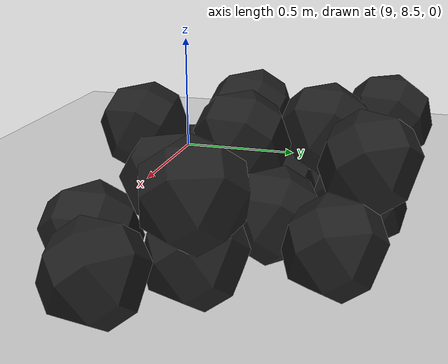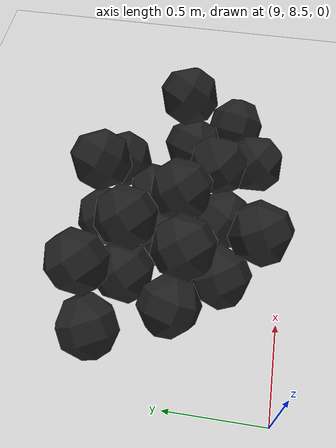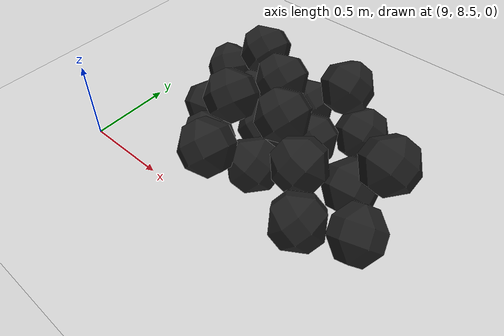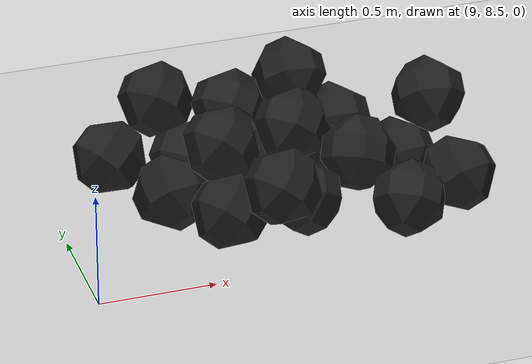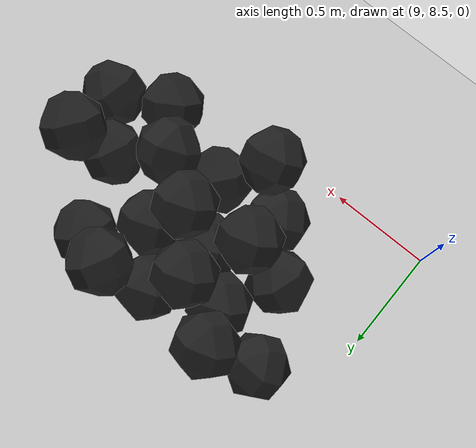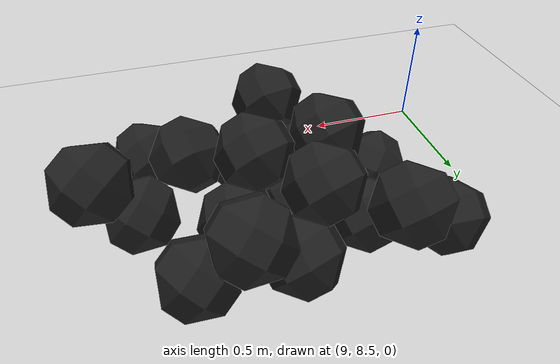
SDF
<sdf version="1.7">
 <world name="default">
  <model name="ground_plane">
   <static>1</static>
   <link name="link">
    <collision name="collision">
     <geometry><plane><normal>0 0 1</normal><size>100 100</size></plane></geometry>
     <surface><friction><ode><mu>100</mu><mu2>50</mu2></ode></friction></surface>
    </collision>
    <visual name="visual">
     <cast_shadows>0</cast_shadows>
     <geometry><plane><normal>0 0 1</normal><size>100 100</size></plane></geometry>
     <material>
      <script><uri>file://media/materials/scripts/gazebo.material</uri><name>Gazebo/Grey</name></script>
     </material>
    </visual>
   </link>
  </model>
  <model name="haoduomiantiaa_1">
   <link name="link_0">
    <inertial>
     <mass>0.2</mass>
     <inertia>
      <ixx>0.166667</ixx>
      <ixy>0</ixy>
      <ixz>0</ixz>
      <iyy>0.166667</iyy>
      <iyz>0</iyz>
      <izz>0.166667</izz>
     </inertia>
    </inertial>
    <visual name="visual">
     <geometry>
      <mesh>
       <uri>/home/lihaoyang/catkin_ws/src/pudong_gazebo/world/stl/haoduomianti.stl</uri>
       <scale>1 1 1</scale>
      </mesh>
     </geometry>
     <material>
      <lighting>1</lighting>
      <script><uri>file://media/materials/scripts/gazebo.material</uri><name>Gazebo/Black</name></script>
      <shader type="pixel"><normal_map>__default__</normal_map></shader>
      <ambient>0.3 0.3 0.3 1</ambient>
      <diffuse>0.7 0.7 0.7 1</diffuse>
      <specular>0.01 0.01 0.01 1</specular>
      <emissive>0 0 0 1</emissive>
     </material>
    </visual>
    <collision name="collision">
     <geometry>
      <mesh>
       <uri>/home/lihaoyang/catkin_ws/src/pudong_gazebo/world/stl/haoduomianti.stl</uri>
       <scale>1 1 1</scale>
      </mesh>
     </geometry>
     <surface>
      <friction>
       <ode><mu>1</mu><mu2>1</mu2><fdir1>0 0 0</fdir1><slip1>0</slip1><slip2>0</slip2></ode>
       <torsional>
        <coefficient>1</coefficient>
        <patch_radius>0</patch_radius>
        <surface_radius>0</surface_radius>
        <use_patch_radius>1</use_patch_radius>
        <ode><slip>0</slip></ode>
       </torsional>
      </friction>
      <bounce><restitution_coefficient>0</restitution_coefficient><threshold>1e+06</threshold></bounce>
      <contact>
       <collide_without_contact>0</collide_without_contact>
       <collide_without_contact_bitmask>1</collide_without_contact_bitmask>
       <collide_bitmask>1</collide_bitmask>
       <ode>
        <soft_cfm>0</soft_cfm>
        <soft_erp>0.2</soft_erp>
        <kp>1e+13</kp>
        <kd>1</kd>
        <max_vel>0.01</max_vel>
        <min_depth>0</min_depth>
       </ode>
       <bullet>
        <split_impulse>1</split_impulse>
        <split_impulse_penetration_threshold>-0.01</split_impulse_penetration_threshold>
        <soft_cfm>0</soft_cfm>
        <soft_erp>0.2</soft_erp>
        <kp>1e+13</kp>
        <kd>1</kd>
       </bullet>
      </contact>
     </surface>
    </collision>
   </link>
   <static>0</static>
   <pose>10.0034 9.05786 0.103944 0.788247 -0.6195 0.880042</pose>
  </model>
  <model name="haoduomiantiaa_6">
   <link name="link_0">
    <inertial>
     <mass>0.2</mass>
     <inertia>
      <ixx>0.166667</ixx>
      <ixy>0</ixy>
      <ixz>0</ixz>
      <iyy>0.166667</iyy>
      <iyz>0</iyz>
      <izz>0.166667</izz>
     </inertia>
    </inertial>
    <visual name="visual">
     <geometry>
      <mesh>
       <uri>/home/lihaoyang/catkin_ws/src/pudong_gazebo/world/stl/haoduomianti.stl</uri>
       <scale>1 1 1</scale>
      </mesh>
     </geometry>
     <material>
      <lighting>1</lighting>
      <script><uri>file://media/materials/scripts/gazebo.material</uri><name>Gazebo/Black</name></script>
      <shader type="pixel"><normal_map>__default__</normal_map></shader>
      <ambient>0.3 0.3 0.3 1</ambient>
      <diffuse>0.7 0.7 0.7 1</diffuse>
      <specular>0.01 0.01 0.01 1</specular>
      <emissive>0 0 0 1</emissive>
     </material>
    </visual>
    <collision name="collision">
     <geometry>
      <mesh>
       <uri>/home/lihaoyang/catkin_ws/src/pudong_gazebo/world/stl/haoduomianti.stl</uri>
       <scale>1 1 1</scale>
      </mesh>
     </geometry>
     <surface>
      <friction>
       <ode><mu>1</mu><mu2>1</mu2><fdir1>0 0 0</fdir1><slip1>0</slip1><slip2>0</slip2></ode>
       <torsional>
        <coefficient>1</coefficient>
        <patch_radius>0</patch_radius>
        <surface_radius>0</surface_radius>
        <use_patch_radius>1</use_patch_radius>
        <ode><slip>0</slip></ode>
       </torsional>
      </friction>
      <bounce><restitution_coefficient>0</restitution_coefficient><threshold>1e+06</threshold></bounce>
      <contact>
       <collide_without_contact>0</collide_without_contact>
       <collide_without_contact_bitmask>1</collide_without_contact_bitmask>
       <collide_bitmask>1</collide_bitmask>
       <ode>
        <soft_cfm>0</soft_cfm>
        <soft_erp>0.2</soft_erp>
        <kp>1e+13</kp>
        <kd>1</kd>
        <max_vel>0.01</max_vel>
        <min_depth>0</min_depth>
       </ode>
       <bullet>
        <split_impulse>1</split_impulse>
        <split_impulse_penetration_threshold>-0.01</split_impulse_penetration_threshold>
        <soft_cfm>0</soft_cfm>
        <soft_erp>0.2</soft_erp>
        <kp>1e+13</kp>
        <kd>1</kd>
       </bullet>
      </contact>
     </surface>
    </collision>
   </link>
   <static>0</static>
   <pose>10.6652 8.82141 -0.115469 0.785407 -0.615474 -0.216678</pose>
  </model>
  <model name="haoduomiantiaa_11">
   <link name="link_0">
    <inertial>
     <mass>0.2</mass>
     <inertia>
      <ixx>0.166667</ixx>
      <ixy>0</ixy>
      <ixz>0</ixz>
      <iyy>0.166667</iyy>
      <iyz>0</iyz>
      <izz>0.166667</izz>
     </inertia>
    </inertial>
    <visual name="visual">
     <geometry>
      <mesh>
       <uri>/home/lihaoyang/catkin_ws/src/pudong_gazebo/world/stl/haoduomianti.stl</uri>
       <scale>1 1 1</scale>
      </mesh>
     </geometry>
     <material>
      <lighting>1</lighting>
      <script><uri>file://media/materials/scripts/gazebo.material</uri><name>Gazebo/Black</name></script>
      <shader type="pixel"><normal_map>__default__</normal_map></shader>
      <ambient>0.3 0.3 0.3 1</ambient>
      <diffuse>0.7 0.7 0.7 1</diffuse>
      <specular>0.01 0.01 0.01 1</specular>
      <emissive>0 0 0 1</emissive>
     </material>
    </visual>
    <collision name="collision">
     <geometry>
      <mesh>
       <uri>/home/lihaoyang/catkin_ws/src/pudong_gazebo/world/stl/haoduomianti.stl</uri>
       <scale>1 1 1</scale>
      </mesh>
     </geometry>
     <surface>
      <friction>
       <ode><mu>1</mu><mu2>1</mu2><fdir1>0 0 0</fdir1><slip1>0</slip1><slip2>0</slip2></ode>
       <torsional>
        <coefficient>1</coefficient>
        <patch_radius>0</patch_radius>
        <surface_radius>0</surface_radius>
        <use_patch_radius>1</use_patch_radius>
        <ode><slip>0</slip></ode>
       </torsional>
      </friction>
      <bounce><restitution_coefficient>0</restitution_coefficient><threshold>1e+06</threshold></bounce>
      <contact>
       <collide_without_contact>0</collide_without_contact>
       <collide_without_contact_bitmask>1</collide_without_contact_bitmask>
       <collide_bitmask>1</collide_bitmask>
       <ode>
        <soft_cfm>0</soft_cfm>
        <soft_erp>0.2</soft_erp>
        <kp>1e+13</kp>
        <kd>1</kd>
        <max_vel>0.01</max_vel>
        <min_depth>0</min_depth>
       </ode>
       <bullet>
        <split_impulse>1</split_impulse>
        <split_impulse_penetration_threshold>-0.01</split_impulse_penetration_threshold>
        <soft_cfm>0</soft_cfm>
        <soft_erp>0.2</soft_erp>
        <kp>1e+13</kp>
        <kd>1</kd>
       </bullet>
      </contact>
     </surface>
    </collision>
   </link>
   <static>0</static>
   <pose>9.61211 9.29436 -0.1155 0.785394 -0.615481 -1.21931</pose>
  </model>
  <model name="haoduomiantiaa_13">
   <link name="link_0">
    <inertial>
     <mass>0.2</mass>
     <inertia>
      <ixx>0.166667</ixx>
      <ixy>0</ixy>
      <ixz>0</ixz>
      <iyy>0.166667</iyy>
      <iyz>0</iyz>
      <izz>0.166667</izz>
     </inertia>
    </inertial>
    <visual name="visual">
     <geometry>
      <mesh>
       <uri>/home/lihaoyang/catkin_ws/src/pudong_gazebo/world/stl/haoduomianti.stl</uri>
       <scale>1 1 1</scale>
      </mesh>
     </geometry>
     <material>
      <lighting>1</lighting>
      <script><uri>file://media/materials/scripts/gazebo.material</uri><name>Gazebo/Black</name></script>
      <shader type="pixel"><normal_map>__default__</normal_map></shader>
      <ambient>0.3 0.3 0.3 1</ambient>
      <diffuse>0.7 0.7 0.7 1</diffuse>
      <specular>0.01 0.01 0.01 1</specular>
      <emissive>0 0 0 1</emissive>
     </material>
    </visual>
    <collision name="collision">
     <geometry>
      <mesh>
       <uri>/home/lihaoyang/catkin_ws/src/pudong_gazebo/world/stl/haoduomianti.stl</uri>
       <scale>1 1 1</scale>
      </mesh>
     </geometry>
     <surface>
      <friction>
       <ode><mu>1</mu><mu2>1</mu2><fdir1>0 0 0</fdir1><slip1>0</slip1><slip2>0</slip2></ode>
       <torsional>
        <coefficient>1</coefficient>
        <patch_radius>0</patch_radius>
        <surface_radius>0</surface_radius>
        <use_patch_radius>1</use_patch_radius>
        <ode><slip>0</slip></ode>
       </torsional>
      </friction>
      <bounce><restitution_coefficient>0</restitution_coefficient><threshold>1e+06</threshold></bounce>
      <contact>
       <collide_without_contact>0</collide_without_contact>
       <collide_without_contact_bitmask>1</collide_without_contact_bitmask>
       <collide_bitmask>1</collide_bitmask>
       <ode>
        <soft_cfm>0</soft_cfm>
        <soft_erp>0.2</soft_erp>
        <kp>1e+13</kp>
        <kd>1</kd>
        <max_vel>0.01</max_vel>
        <min_depth>0</min_depth>
       </ode>
       <bullet>
        <split_impulse>1</split_impulse>
        <split_impulse_penetration_threshold>-0.01</split_impulse_penetration_threshold>
        <soft_cfm>0</soft_cfm>
        <soft_erp>0.2</soft_erp>
        <kp>1e+13</kp>
        <kd>1</kd>
       </bullet>
      </contact>
     </surface>
    </collision>
   </link>
   <static>0</static>
   <pose>9.92416 9.44285 -0.115535 0.785401 -0.615476 2.97005</pose>
  </model>
  <model name="haoduomiantiaa_34">
   <link name="link_0">
    <inertial>
     <mass>0.2</mass>
     <inertia>
      <ixx>0.166667</ixx>
      <ixy>0</ixy>
      <ixz>0</ixz>
      <iyy>0.166667</iyy>
      <iyz>0</iyz>
      <izz>0.166667</izz>
     </inertia>
    </inertial>
    <visual name="visual">
     <geometry>
      <mesh>
       <uri>/home/lihaoyang/catkin_ws/src/pudong_gazebo/world/stl/haoduomianti.stl</uri>
       <scale>1 1 1</scale>
      </mesh>
     </geometry>
     <material>
      <lighting>1</lighting>
      <script><uri>file://media/materials/scripts/gazebo.material</uri><name>Gazebo/Black</name></script>
      <shader type="pixel"><normal_map>__default__</normal_map></shader>
      <ambient>0.3 0.3 0.3 1</ambient>
      <diffuse>0.7 0.7 0.7 1</diffuse>
      <specular>0.01 0.01 0.01 1</specular>
      <emissive>0 0 0 1</emissive>
     </material>
    </visual>
    <collision name="collision">
     <geometry>
      <mesh>
       <uri>/home/lihaoyang/catkin_ws/src/pudong_gazebo/world/stl/haoduomianti.stl</uri>
       <scale>1 1 1</scale>
      </mesh>
     </geometry>
     <surface>
      <friction>
       <ode><mu>1</mu><mu2>1</mu2><fdir1>0 0 0</fdir1><slip1>0</slip1><slip2>0</slip2></ode>
       <torsional>
        <coefficient>1</coefficient>
        <patch_radius>0</patch_radius>
        <surface_radius>0</surface_radius>
        <use_patch_radius>1</use_patch_radius>
        <ode><slip>0</slip></ode>
       </torsional>
      </friction>
      <bounce><restitution_coefficient>0</restitution_coefficient><threshold>1e+06</threshold></bounce>
      <contact>
       <collide_without_contact>0</collide_without_contact>
       <collide_without_contact_bitmask>1</collide_without_contact_bitmask>
       <collide_bitmask>1</collide_bitmask>
       <ode>
        <soft_cfm>0</soft_cfm>
        <soft_erp>0.2</soft_erp>
        <kp>1e+13</kp>
        <kd>1</kd>
        <max_vel>0.01</max_vel>
        <min_depth>0</min_depth>
       </ode>
       <bullet>
        <split_impulse>1</split_impulse>
        <split_impulse_penetration_threshold>-0.01</split_impulse_penetration_threshold>
        <soft_cfm>0</soft_cfm>
        <soft_erp>0.2</soft_erp>
        <kp>1e+13</kp>
        <kd>1</kd>
       </bullet>
      </contact>
     </surface>
    </collision>
   </link>
   <static>0</static>
   <pose>9.99031 8.82987 -0.115589 0.785568 -0.615558 -0.683853</pose>
  </model>
  <model name="haoduomiantiaa_48">
   <link name="link_0">
    <inertial>
     <mass>0.2</mass>
     <inertia>
      <ixx>0.166667</ixx>
      <ixy>0</ixy>
      <ixz>0</ixz>
      <iyy>0.166667</iyy>
      <iyz>0</iyz>
      <izz>0.166667</izz>
     </inertia>
    </inertial>
    <visual name="visual">
     <geometry>
      <mesh>
       <uri>/home/lihaoyang/catkin_ws/src/pudong_gazebo/world/stl/haoduomianti.stl</uri>
       <scale>1 1 1</scale>
      </mesh>
     </geometry>
     <material>
      <lighting>1</lighting>
      <script><uri>file://media/materials/scripts/gazebo.material</uri><name>Gazebo/Black</name></script>
      <shader type="pixel"><normal_map>__default__</normal_map></shader>
      <ambient>0.3 0.3 0.3 1</ambient>
      <diffuse>0.7 0.7 0.7 1</diffuse>
      <specular>0.01 0.01 0.01 1</specular>
      <emissive>0 0 0 1</emissive>
     </material>
    </visual>
    <collision name="collision">
     <geometry>
      <mesh>
       <uri>/home/lihaoyang/catkin_ws/src/pudong_gazebo/world/stl/haoduomianti.stl</uri>
       <scale>1 1 1</scale>
      </mesh>
     </geometry>
     <surface>
      <friction>
       <ode><mu>1</mu><mu2>1</mu2><fdir1>0 0 0</fdir1><slip1>0</slip1><slip2>0</slip2></ode>
       <torsional>
        <coefficient>1</coefficient>
        <patch_radius>0</patch_radius>
        <surface_radius>0</surface_radius>
        <use_patch_radius>1</use_patch_radius>
        <ode><slip>0</slip></ode>
       </torsional>
      </friction>
      <bounce><restitution_coefficient>0</restitution_coefficient><threshold>1e+06</threshold></bounce>
      <contact>
       <collide_without_contact>0</collide_without_contact>
       <collide_without_contact_bitmask>1</collide_without_contact_bitmask>
       <collide_bitmask>1</collide_bitmask>
       <ode>
        <soft_cfm>0</soft_cfm>
        <soft_erp>0.2</soft_erp>
        <kp>1e+13</kp>
        <kd>1</kd>
        <max_vel>0.01</max_vel>
        <min_depth>0</min_depth>
       </ode>
       <bullet>
        <split_impulse>1</split_impulse>
        <split_impulse_penetration_threshold>-0.01</split_impulse_penetration_threshold>
        <soft_cfm>0</soft_cfm>
        <soft_erp>0.2</soft_erp>
        <kp>1e+13</kp>
        <kd>1</kd>
       </bullet>
      </contact>
     </surface>
    </collision>
   </link>
   <static>0</static>
   <pose>10.318 9.42876 -0.115587 0.785393 -0.615485 1.54224</pose>
  </model>
  <model name="haoduomiantiaa_52">
   <link name="link_0">
    <inertial>
     <mass>0.2</mass>
     <inertia>
      <ixx>0.166667</ixx>
      <ixy>0</ixy>
      <ixz>0</ixz>
      <iyy>0.166667</iyy>
      <iyz>0</iyz>
      <izz>0.166667</izz>
     </inertia>
    </inertial>
    <visual name="visual">
     <geometry>
      <mesh>
       <uri>/home/lihaoyang/catkin_ws/src/pudong_gazebo/world/stl/haoduomianti.stl</uri>
       <scale>1 1 1</scale>
      </mesh>
     </geometry>
     <material>
      <lighting>1</lighting>
      <script><uri>file://media/materials/scripts/gazebo.material</uri><name>Gazebo/Black</name></script>
      <shader type="pixel"><normal_map>__default__</normal_map></shader>
      <ambient>0.3 0.3 0.3 1</ambient>
      <diffuse>0.7 0.7 0.7 1</diffuse>
      <specular>0.01 0.01 0.01 1</specular>
      <emissive>0 0 0 1</emissive>
     </material>
    </visual>
    <collision name="collision">
     <geometry>
      <mesh>
       <uri>/home/lihaoyang/catkin_ws/src/pudong_gazebo/world/stl/haoduomianti.stl</uri>
       <scale>1 1 1</scale>
      </mesh>
     </geometry>
     <surface>
      <friction>
       <ode><mu>1</mu><mu2>1</mu2><fdir1>0 0 0</fdir1><slip1>0</slip1><slip2>0</slip2></ode>
       <torsional>
        <coefficient>1</coefficient>
        <patch_radius>0</patch_radius>
        <surface_radius>0</surface_radius>
        <use_patch_radius>1</use_patch_radius>
        <ode><slip>0</slip></ode>
       </torsional>
      </friction>
      <bounce><restitution_coefficient>0</restitution_coefficient><threshold>1e+06</threshold></bounce>
      <contact>
       <collide_without_contact>0</collide_without_contact>
       <collide_without_contact_bitmask>1</collide_without_contact_bitmask>
       <collide_bitmask>1</collide_bitmask>
       <ode>
        <soft_cfm>0</soft_cfm>
        <soft_erp>0.2</soft_erp>
        <kp>1e+13</kp>
        <kd>1</kd>
        <max_vel>0.01</max_vel>
        <min_depth>0</min_depth>
       </ode>
       <bullet>
        <split_impulse>1</split_impulse>
        <split_impulse_penetration_threshold>-0.01</split_impulse_penetration_threshold>
        <soft_cfm>0</soft_cfm>
        <soft_erp>0.2</soft_erp>
        <kp>1e+13</kp>
        <kd>1</kd>
       </bullet>
      </contact>
     </surface>
    </collision>
   </link>
   <static>0</static>
   <pose>9.46501 9.03412 -0.115525 0.7854 -0.61547 -2.40322</pose>
  </model>
  <model name="haoduomiantiaa_53">
   <link name="link_0">
    <inertial>
     <mass>0.2</mass>
     <inertia>
      <ixx>0.166667</ixx>
      <ixy>0</ixy>
      <ixz>0</ixz>
      <iyy>0.166667</iyy>
      <iyz>0</iyz>
      <izz>0.166667</izz>
     </inertia>
    </inertial>
    <visual name="visual">
     <geometry>
      <mesh>
       <uri>/home/lihaoyang/catkin_ws/src/pudong_gazebo/world/stl/haoduomianti.stl</uri>
       <scale>1 1 1</scale>
      </mesh>
     </geometry>
     <material>
      <lighting>1</lighting>
      <script><uri>file://media/materials/scripts/gazebo.material</uri><name>Gazebo/Black</name></script>
      <shader type="pixel"><normal_map>__default__</normal_map></shader>
      <ambient>0.3 0.3 0.3 1</ambient>
      <diffuse>0.7 0.7 0.7 1</diffuse>
      <specular>0.01 0.01 0.01 1</specular>
      <emissive>0 0 0 1</emissive>
     </material>
    </visual>
    <collision name="collision">
     <geometry>
      <mesh>
       <uri>/home/lihaoyang/catkin_ws/src/pudong_gazebo/world/stl/haoduomianti.stl</uri>
       <scale>1 1 1</scale>
      </mesh>
     </geometry>
     <surface>
      <friction>
       <ode><mu>1</mu><mu2>1</mu2><fdir1>0 0 0</fdir1><slip1>0</slip1><slip2>0</slip2></ode>
       <torsional>
        <coefficient>1</coefficient>
        <patch_radius>0</patch_radius>
        <surface_radius>0</surface_radius>
        <use_patch_radius>1</use_patch_radius>
        <ode><slip>0</slip></ode>
       </torsional>
      </friction>
      <bounce><restitution_coefficient>0</restitution_coefficient><threshold>1e+06</threshold></bounce>
      <contact>
       <collide_without_contact>0</collide_without_contact>
       <collide_without_contact_bitmask>1</collide_without_contact_bitmask>
       <collide_bitmask>1</collide_bitmask>
       <ode>
        <soft_cfm>0</soft_cfm>
        <soft_erp>0.2</soft_erp>
        <kp>1e+13</kp>
        <kd>1</kd>
        <max_vel>0.01</max_vel>
        <min_depth>0</min_depth>
       </ode>
       <bullet>
        <split_impulse>1</split_impulse>
        <split_impulse_penetration_threshold>-0.01</split_impulse_penetration_threshold>
        <soft_cfm>0</soft_cfm>
        <soft_erp>0.2</soft_erp>
        <kp>1e+13</kp>
        <kd>1</kd>
       </bullet>
      </contact>
     </surface>
    </collision>
   </link>
   <static>0</static>
   <pose>9.30009 9.40328 -0.115469 0.785406 -0.615474 0.489735</pose>
  </model>
  <model name="haoduomiantiaa_56">
   <link name="link_0">
    <inertial>
     <mass>0.2</mass>
     <inertia>
      <ixx>0.166667</ixx>
      <ixy>0</ixy>
      <ixz>0</ixz>
      <iyy>0.166667</iyy>
      <iyz>0</iyz>
      <izz>0.166667</izz>
     </inertia>
    </inertial>
    <visual name="visual">
     <geometry>
      <mesh>
       <uri>/home/lihaoyang/catkin_ws/src/pudong_gazebo/world/stl/haoduomianti.stl</uri>
       <scale>1 1 1</scale>
      </mesh>
     </geometry>
     <material>
      <lighting>1</lighting>
      <script><uri>file://media/materials/scripts/gazebo.material</uri><name>Gazebo/Black</name></script>
      <shader type="pixel"><normal_map>__default__</normal_map></shader>
      <ambient>0.3 0.3 0.3 1</ambient>
      <diffuse>0.7 0.7 0.7 1</diffuse>
      <specular>0.01 0.01 0.01 1</specular>
      <emissive>0 0 0 1</emissive>
     </material>
    </visual>
    <collision name="collision">
     <geometry>
      <mesh>
       <uri>/home/lihaoyang/catkin_ws/src/pudong_gazebo/world/stl/haoduomianti.stl</uri>
       <scale>1 1 1</scale>
      </mesh>
     </geometry>
     <surface>
      <friction>
       <ode><mu>1</mu><mu2>1</mu2><fdir1>0 0 0</fdir1><slip1>0</slip1><slip2>0</slip2></ode>
       <torsional>
        <coefficient>1</coefficient>
        <patch_radius>0</patch_radius>
        <surface_radius>0</surface_radius>
        <use_patch_radius>1</use_patch_radius>
        <ode><slip>0</slip></ode>
       </torsional>
      </friction>
      <bounce><restitution_coefficient>0</restitution_coefficient><threshold>1e+06</threshold></bounce>
      <contact>
       <collide_without_contact>0</collide_without_contact>
       <collide_without_contact_bitmask>1</collide_without_contact_bitmask>
       <collide_bitmask>1</collide_bitmask>
       <ode>
        <soft_cfm>0</soft_cfm>
        <soft_erp>0.2</soft_erp>
        <kp>1e+13</kp>
        <kd>1</kd>
        <max_vel>0.01</max_vel>
        <min_depth>0</min_depth>
       </ode>
       <bullet>
        <split_impulse>1</split_impulse>
        <split_impulse_penetration_threshold>-0.01</split_impulse_penetration_threshold>
        <soft_cfm>0</soft_cfm>
        <soft_erp>0.2</soft_erp>
        <kp>1e+13</kp>
        <kd>1</kd>
       </bullet>
      </contact>
     </surface>
    </collision>
   </link>
   <static>0</static>
   <pose>10.4003 8.68853 -0.115561 0.785419 -0.615482 1.08519</pose>
  </model>
  <model name="haoduomiantiaa_63">
   <link name="link_0">
    <inertial>
     <mass>0.2</mass>
     <inertia>
      <ixx>0.166667</ixx>
      <ixy>0</ixy>
      <ixz>0</ixz>
      <iyy>0.166667</iyy>
      <iyz>0</iyz>
      <izz>0.166667</izz>
     </inertia>
    </inertial>
    <visual name="visual">
     <geometry>
      <mesh>
       <uri>/home/lihaoyang/catkin_ws/src/pudong_gazebo/world/stl/haoduomianti.stl</uri>
       <scale>1 1 1</scale>
      </mesh>
     </geometry>
     <material>
      <lighting>1</lighting>
      <script><uri>file://media/materials/scripts/gazebo.material</uri><name>Gazebo/Black</name></script>
      <shader type="pixel"><normal_map>__default__</normal_map></shader>
      <ambient>0.3 0.3 0.3 1</ambient>
      <diffuse>0.7 0.7 0.7 1</diffuse>
      <specular>0.01 0.01 0.01 1</specular>
      <emissive>0 0 0 1</emissive>
     </material>
    </visual>
    <collision name="collision">
     <geometry>
      <mesh>
       <uri>/home/lihaoyang/catkin_ws/src/pudong_gazebo/world/stl/haoduomianti.stl</uri>
       <scale>1 1 1</scale>
      </mesh>
     </geometry>
     <surface>
      <friction>
       <ode><mu>1</mu><mu2>1</mu2><fdir1>0 0 0</fdir1><slip1>0</slip1><slip2>0</slip2></ode>
       <torsional>
        <coefficient>1</coefficient>
        <patch_radius>0</patch_radius>
        <surface_radius>0</surface_radius>
        <use_patch_radius>1</use_patch_radius>
        <ode><slip>0</slip></ode>
       </torsional>
      </friction>
      <bounce><restitution_coefficient>0</restitution_coefficient><threshold>1e+06</threshold></bounce>
      <contact>
       <collide_without_contact>0</collide_without_contact>
       <collide_without_contact_bitmask>1</collide_without_contact_bitmask>
       <collide_bitmask>1</collide_bitmask>
       <ode>
        <soft_cfm>0</soft_cfm>
        <soft_erp>0.2</soft_erp>
        <kp>1e+13</kp>
        <kd>1</kd>
        <max_vel>0.01</max_vel>
        <min_depth>0</min_depth>
       </ode>
       <bullet>
        <split_impulse>1</split_impulse>
        <split_impulse_penetration_threshold>-0.01</split_impulse_penetration_threshold>
        <soft_cfm>0</soft_cfm>
        <soft_erp>0.2</soft_erp>
        <kp>1e+13</kp>
        <kd>1</kd>
       </bullet>
      </contact>
     </surface>
    </collision>
   </link>
   <static>0</static>
   <pose>10.1141 9.19824 -0.115481 0.785404 -0.615407 -1.2095</pose>
  </model>
  <model name="haoduomiantiaa_70">
   <link name="link_0">
    <inertial>
     <mass>0.2</mass>
     <inertia>
      <ixx>0.166667</ixx>
      <ixy>0</ixy>
      <ixz>0</ixz>
      <iyy>0.166667</iyy>
      <iyz>0</iyz>
      <izz>0.166667</izz>
     </inertia>
    </inertial>
    <visual name="visual">
     <geometry>
      <mesh>
       <uri>/home/lihaoyang/catkin_ws/src/pudong_gazebo/world/stl/haoduomianti.stl</uri>
       <scale>1 1 1</scale>
      </mesh>
     </geometry>
     <material>
      <lighting>1</lighting>
      <script><uri>file://media/materials/scripts/gazebo.material</uri><name>Gazebo/Black</name></script>
      <shader type="pixel"><normal_map>__default__</normal_map></shader>
      <ambient>0.3 0.3 0.3 1</ambient>
      <diffuse>0.7 0.7 0.7 1</diffuse>
      <specular>0.01 0.01 0.01 1</specular>
      <emissive>0 0 0 1</emissive>
     </material>
    </visual>
    <collision name="collision">
     <geometry>
      <mesh>
       <uri>/home/lihaoyang/catkin_ws/src/pudong_gazebo/world/stl/haoduomianti.stl</uri>
       <scale>1 1 1</scale>
      </mesh>
     </geometry>
     <surface>
      <friction>
       <ode><mu>1</mu><mu2>1</mu2><fdir1>0 0 0</fdir1><slip1>0</slip1><slip2>0</slip2></ode>
       <torsional>
        <coefficient>1</coefficient>
        <patch_radius>0</patch_radius>
        <surface_radius>0</surface_radius>
        <use_patch_radius>1</use_patch_radius>
        <ode><slip>0</slip></ode>
       </torsional>
      </friction>
      <bounce><restitution_coefficient>0</restitution_coefficient><threshold>1e+06</threshold></bounce>
      <contact>
       <collide_without_contact>0</collide_without_contact>
       <collide_without_contact_bitmask>1</collide_without_contact_bitmask>
       <collide_bitmask>1</collide_bitmask>
       <ode>
        <soft_cfm>0</soft_cfm>
        <soft_erp>0.2</soft_erp>
        <kp>1e+13</kp>
        <kd>1</kd>
        <max_vel>0.01</max_vel>
        <min_depth>0</min_depth>
       </ode>
       <bullet>
        <split_impulse>1</split_impulse>
        <split_impulse_penetration_threshold>-0.01</split_impulse_penetration_threshold>
        <soft_cfm>0</soft_cfm>
        <soft_erp>0.2</soft_erp>
        <kp>1e+13</kp>
        <kd>1</kd>
       </bullet>
      </contact>
     </surface>
    </collision>
   </link>
   <static>0</static>
   <pose>9.64593 8.9926 0.103041 0.85935 -0.519828 0.747028</pose>
  </model>
  <model name="haoduomiantiaa_74">
   <link name="link_0">
    <inertial>
     <mass>0.2</mass>
     <inertia>
      <ixx>0.166667</ixx>
      <ixy>0</ixy>
      <ixz>0</ixz>
      <iyy>0.166667</iyy>
      <iyz>0</iyz>
      <izz>0.166667</izz>
     </inertia>
    </inertial>
    <visual name="visual">
     <geometry>
      <mesh>
       <uri>/home/lihaoyang/catkin_ws/src/pudong_gazebo/world/stl/haoduomianti.stl</uri>
       <scale>1 1 1</scale>
      </mesh>
     </geometry>
     <material>
      <lighting>1</lighting>
      <script><uri>file://media/materials/scripts/gazebo.material</uri><name>Gazebo/Black</name></script>
      <shader type="pixel"><normal_map>__default__</normal_map></shader>
      <ambient>0.3 0.3 0.3 1</ambient>
      <diffuse>0.7 0.7 0.7 1</diffuse>
      <specular>0.01 0.01 0.01 1</specular>
      <emissive>0 0 0 1</emissive>
     </material>
    </visual>
    <collision name="collision">
     <geometry>
      <mesh>
       <uri>/home/lihaoyang/catkin_ws/src/pudong_gazebo/world/stl/haoduomianti.stl</uri>
       <scale>1 1 1</scale>
      </mesh>
     </geometry>
     <surface>
      <friction>
       <ode><mu>1</mu><mu2>1</mu2><fdir1>0 0 0</fdir1><slip1>0</slip1><slip2>0</slip2></ode>
       <torsional>
        <coefficient>1</coefficient>
        <patch_radius>0</patch_radius>
        <surface_radius>0</surface_radius>
        <use_patch_radius>1</use_patch_radius>
        <ode><slip>0</slip></ode>
       </torsional>
      </friction>
      <bounce><restitution_coefficient>0</restitution_coefficient><threshold>1e+06</threshold></bounce>
      <contact>
       <collide_without_contact>0</collide_without_contact>
       <collide_without_contact_bitmask>1</collide_without_contact_bitmask>
       <collide_bitmask>1</collide_bitmask>
       <ode>
        <soft_cfm>0</soft_cfm>
        <soft_erp>0.2</soft_erp>
        <kp>1e+13</kp>
        <kd>1</kd>
        <max_vel>0.01</max_vel>
        <min_depth>0</min_depth>
       </ode>
       <bullet>
        <split_impulse>1</split_impulse>
        <split_impulse_penetration_threshold>-0.01</split_impulse_penetration_threshold>
        <soft_cfm>0</soft_cfm>
        <soft_erp>0.2</soft_erp>
        <kp>1e+13</kp>
        <kd>1</kd>
       </bullet>
      </contact>
     </surface>
    </collision>
   </link>
   <static>0</static>
   <pose>10.4772 9.05112 -0.115525 0.78544 -0.615491 1.67644</pose>
  </model>
  <model name="haoduomiantiaa_81">
   <link name="link_0">
    <inertial>
     <mass>0.2</mass>
     <inertia>
      <ixx>0.166667</ixx>
      <ixy>0</ixy>
      <ixz>0</ixz>
      <iyy>0.166667</iyy>
      <iyz>0</iyz>
      <izz>0.166667</izz>
     </inertia>
    </inertial>
    <visual name="visual">
     <geometry>
      <mesh>
       <uri>/home/lihaoyang/catkin_ws/src/pudong_gazebo/world/stl/haoduomianti.stl</uri>
       <scale>1 1 1</scale>
      </mesh>
     </geometry>
     <material>
      <lighting>1</lighting>
      <script><uri>file://media/materials/scripts/gazebo.material</uri><name>Gazebo/Black</name></script>
      <shader type="pixel"><normal_map>__default__</normal_map></shader>
      <ambient>0.3 0.3 0.3 1</ambient>
      <diffuse>0.7 0.7 0.7 1</diffuse>
      <specular>0.01 0.01 0.01 1</specular>
      <emissive>0 0 0 1</emissive>
     </material>
    </visual>
    <collision name="collision">
     <geometry>
      <mesh>
       <uri>/home/lihaoyang/catkin_ws/src/pudong_gazebo/world/stl/haoduomianti.stl</uri>
       <scale>1 1 1</scale>
      </mesh>
     </geometry>
     <surface>
      <friction>
       <ode><mu>1</mu><mu2>1</mu2><fdir1>0 0 0</fdir1><slip1>0</slip1><slip2>0</slip2></ode>
       <torsional>
        <coefficient>1</coefficient>
        <patch_radius>0</patch_radius>
        <surface_radius>0</surface_radius>
        <use_patch_radius>1</use_patch_radius>
        <ode><slip>0</slip></ode>
       </torsional>
      </friction>
      <bounce><restitution_coefficient>0</restitution_coefficient><threshold>1e+06</threshold></bounce>
      <contact>
       <collide_without_contact>0</collide_without_contact>
       <collide_without_contact_bitmask>1</collide_without_contact_bitmask>
       <collide_bitmask>1</collide_bitmask>
       <ode>
        <soft_cfm>0</soft_cfm>
        <soft_erp>0.2</soft_erp>
        <kp>1e+13</kp>
        <kd>1</kd>
        <max_vel>0.01</max_vel>
        <min_depth>0</min_depth>
       </ode>
       <bullet>
        <split_impulse>1</split_impulse>
        <split_impulse_penetration_threshold>-0.01</split_impulse_penetration_threshold>
        <soft_cfm>0</soft_cfm>
        <soft_erp>0.2</soft_erp>
        <kp>1e+13</kp>
        <kd>1</kd>
       </bullet>
      </contact>
     </surface>
    </collision>
   </link>
   <static>0</static>
   <pose>9.6548 8.81192 -0.115494 0.785399 -0.615306 -1.46897</pose>
  </model>
  <model name="haoduomiantiaa_93">
   <link name="link_0">
    <inertial>
     <mass>0.2</mass>
     <inertia>
      <ixx>0.166667</ixx>
      <ixy>0</ixy>
      <ixz>0</ixz>
      <iyy>0.166667</iyy>
      <iyz>0</iyz>
      <izz>0.166667</izz>
     </inertia>
    </inertial>
    <visual name="visual">
     <geometry>
      <mesh>
       <uri>/home/lihaoyang/catkin_ws/src/pudong_gazebo/world/stl/haoduomianti.stl</uri>
       <scale>1 1 1</scale>
      </mesh>
     </geometry>
     <material>
      <lighting>1</lighting>
      <script><uri>file://media/materials/scripts/gazebo.material</uri><name>Gazebo/Black</name></script>
      <shader type="pixel"><normal_map>__default__</normal_map></shader>
      <ambient>0.3 0.3 0.3 1</ambient>
      <diffuse>0.7 0.7 0.7 1</diffuse>
      <specular>0.01 0.01 0.01 1</specular>
      <emissive>0 0 0 1</emissive>
     </material>
    </visual>
    <collision name="collision">
     <geometry>
      <mesh>
       <uri>/home/lihaoyang/catkin_ws/src/pudong_gazebo/world/stl/haoduomianti.stl</uri>
       <scale>1 1 1</scale>
      </mesh>
     </geometry>
     <surface>
      <friction>
       <ode><mu>1</mu><mu2>1</mu2><fdir1>0 0 0</fdir1><slip1>0</slip1><slip2>0</slip2></ode>
       <torsional>
        <coefficient>1</coefficient>
        <patch_radius>0</patch_radius>
        <surface_radius>0</surface_radius>
        <use_patch_radius>1</use_patch_radius>
        <ode><slip>0</slip></ode>
       </torsional>
      </friction>
      <bounce><restitution_coefficient>0</restitution_coefficient><threshold>1e+06</threshold></bounce>
      <contact>
       <collide_without_contact>0</collide_without_contact>
       <collide_without_contact_bitmask>1</collide_without_contact_bitmask>
       <collide_bitmask>1</collide_bitmask>
       <ode>
        <soft_cfm>0</soft_cfm>
        <soft_erp>0.2</soft_erp>
        <kp>1e+13</kp>
        <kd>1</kd>
        <max_vel>0.01</max_vel>
        <min_depth>0</min_depth>
       </ode>
       <bullet>
        <split_impulse>1</split_impulse>
        <split_impulse_penetration_threshold>-0.01</split_impulse_penetration_threshold>
        <soft_cfm>0</soft_cfm>
        <soft_erp>0.2</soft_erp>
        <kp>1e+13</kp>
        <kd>1</kd>
       </bullet>
      </contact>
     </surface>
    </collision>
   </link>
   <static>0</static>
   <pose>9.54382 9.4775 0.085328 0.82809 -0.655841 -1.28925</pose>
  </model>
  <model name="haoduomiantiaa_98">
   <link name="link_0">
    <inertial>
     <mass>0.2</mass>
     <inertia>
      <ixx>0.166667</ixx>
      <ixy>0</ixy>
      <ixz>0</ixz>
      <iyy>0.166667</iyy>
      <iyz>0</iyz>
      <izz>0.166667</izz>
     </inertia>
    </inertial>
    <visual name="visual">
     <geometry>
      <mesh>
       <uri>/home/lihaoyang/catkin_ws/src/pudong_gazebo/world/stl/haoduomianti.stl</uri>
       <scale>1 1 1</scale>
      </mesh>
     </geometry>
     <material>
      <lighting>1</lighting>
      <script><uri>file://media/materials/scripts/gazebo.material</uri><name>Gazebo/Black</name></script>
      <shader type="pixel"><normal_map>__default__</normal_map></shader>
      <ambient>0.3 0.3 0.3 1</ambient>
      <diffuse>0.7 0.7 0.7 1</diffuse>
      <specular>0.01 0.01 0.01 1</specular>
      <emissive>0 0 0 1</emissive>
     </material>
    </visual>
    <collision name="collision">
     <geometry>
      <mesh>
       <uri>/home/lihaoyang/catkin_ws/src/pudong_gazebo/world/stl/haoduomianti.stl</uri>
       <scale>1 1 1</scale>
      </mesh>
     </geometry>
     <surface>
      <friction>
       <ode><mu>1</mu><mu2>1</mu2><fdir1>0 0 0</fdir1><slip1>0</slip1><slip2>0</slip2></ode>
       <torsional>
        <coefficient>1</coefficient>
        <patch_radius>0</patch_radius>
        <surface_radius>0</surface_radius>
        <use_patch_radius>1</use_patch_radius>
        <ode><slip>0</slip></ode>
       </torsional>
      </friction>
      <bounce><restitution_coefficient>0</restitution_coefficient><threshold>1e+06</threshold></bounce>
      <contact>
       <collide_without_contact>0</collide_without_contact>
       <collide_without_contact_bitmask>1</collide_without_contact_bitmask>
       <collide_bitmask>1</collide_bitmask>
       <ode>
        <soft_cfm>0</soft_cfm>
        <soft_erp>0.2</soft_erp>
        <kp>1e+13</kp>
        <kd>1</kd>
        <max_vel>0.01</max_vel>
        <min_depth>0</min_depth>
       </ode>
       <bullet>
        <split_impulse>1</split_impulse>
        <split_impulse_penetration_threshold>-0.01</split_impulse_penetration_threshold>
        <soft_cfm>0</soft_cfm>
        <soft_erp>0.2</soft_erp>
        <kp>1e+13</kp>
        <kd>1</kd>
       </bullet>
      </contact>
     </surface>
    </collision>
   </link>
   <static>0</static>
   <pose>9.83109 9.11528 -0.115599 0.78539 -0.615483 -1.21932</pose>
  </model>
  <model name="haoduomiantiaa_110">
   <link name="link_0">
    <inertial>
     <mass>0.2</mass>
     <inertia>
      <ixx>0.166667</ixx>
      <ixy>0</ixy>
      <ixz>0</ixz>
      <iyy>0.166667</iyy>
      <iyz>0</iyz>
      <izz>0.166667</izz>
     </inertia>
    </inertial>
    <visual name="visual">
     <geometry>
      <mesh>
       <uri>/home/lihaoyang/catkin_ws/src/pudong_gazebo/world/stl/haoduomianti.stl</uri>
       <scale>1 1 1</scale>
      </mesh>
     </geometry>
     <material>
      <lighting>1</lighting>
      <script><uri>file://media/materials/scripts/gazebo.material</uri><name>Gazebo/Black</name></script>
      <shader type="pixel"><normal_map>__default__</normal_map></shader>
      <ambient>0.3 0.3 0.3 1</ambient>
      <diffuse>0.7 0.7 0.7 1</diffuse>
      <specular>0.01 0.01 0.01 1</specular>
      <emissive>0 0 0 1</emissive>
     </material>
    </visual>
    <collision name="collision">
     <geometry>
      <mesh>
       <uri>/home/lihaoyang/catkin_ws/src/pudong_gazebo/world/stl/haoduomianti.stl</uri>
       <scale>1 1 1</scale>
      </mesh>
     </geometry>
     <surface>
      <friction>
       <ode><mu>1</mu><mu2>1</mu2><fdir1>0 0 0</fdir1><slip1>0</slip1><slip2>0</slip2></ode>
       <torsional>
        <coefficient>1</coefficient>
        <patch_radius>0</patch_radius>
        <surface_radius>0</surface_radius>
        <use_patch_radius>1</use_patch_radius>
        <ode><slip>0</slip></ode>
       </torsional>
      </friction>
      <bounce><restitution_coefficient>0</restitution_coefficient><threshold>1e+06</threshold></bounce>
      <contact>
       <collide_without_contact>0</collide_without_contact>
       <collide_without_contact_bitmask>1</collide_without_contact_bitmask>
       <collide_bitmask>1</collide_bitmask>
       <ode>
        <soft_cfm>0</soft_cfm>
        <soft_erp>0.2</soft_erp>
        <kp>1e+13</kp>
        <kd>1</kd>
        <max_vel>0.01</max_vel>
        <min_depth>0</min_depth>
       </ode>
       <bullet>
        <split_impulse>1</split_impulse>
        <split_impulse_penetration_threshold>-0.01</split_impulse_penetration_threshold>
        <soft_cfm>0</soft_cfm>
        <soft_erp>0.2</soft_erp>
        <kp>1e+13</kp>
        <kd>1</kd>
       </bullet>
      </contact>
     </surface>
    </collision>
   </link>
   <static>0</static>
   <pose>9.82383 8.6646 0.067955 0.786124 -0.516391 -1.35997</pose>
  </model>
  <model name="haoduomiantiaa_126">
   <link name="link_0">
    <inertial>
     <mass>0.2</mass>
     <inertia>
      <ixx>0.166667</ixx>
      <ixy>0</ixy>
      <ixz>0</ixz>
      <iyy>0.166667</iyy>
      <iyz>0</iyz>
      <izz>0.166667</izz>
     </inertia>
    </inertial>
    <visual name="visual">
     <geometry>
      <mesh>
       <uri>/home/lihaoyang/catkin_ws/src/pudong_gazebo/world/stl/haoduomianti.stl</uri>
       <scale>1 1 1</scale>
      </mesh>
     </geometry>
     <material>
      <lighting>1</lighting>
      <script><uri>file://media/materials/scripts/gazebo.material</uri><name>Gazebo/Black</name></script>
      <shader type="pixel"><normal_map>__default__</normal_map></shader>
      <ambient>0.3 0.3 0.3 1</ambient>
      <diffuse>0.7 0.7 0.7 1</diffuse>
      <specular>0.01 0.01 0.01 1</specular>
      <emissive>0 0 0 1</emissive>
     </material>
    </visual>
    <collision name="collision">
     <geometry>
      <mesh>
       <uri>/home/lihaoyang/catkin_ws/src/pudong_gazebo/world/stl/haoduomianti.stl</uri>
       <scale>1 1 1</scale>
      </mesh>
     </geometry>
     <surface>
      <friction>
       <ode><mu>1</mu><mu2>1</mu2><fdir1>0 0 0</fdir1><slip1>0</slip1><slip2>0</slip2></ode>
       <torsional>
        <coefficient>1</coefficient>
        <patch_radius>0</patch_radius>
        <surface_radius>0</surface_radius>
        <use_patch_radius>1</use_patch_radius>
        <ode><slip>0</slip></ode>
       </torsional>
      </friction>
      <bounce><restitution_coefficient>0</restitution_coefficient><threshold>1e+06</threshold></bounce>
      <contact>
       <collide_without_contact>0</collide_without_contact>
       <collide_without_contact_bitmask>1</collide_without_contact_bitmask>
       <collide_bitmask>1</collide_bitmask>
       <ode>
        <soft_cfm>0</soft_cfm>
        <soft_erp>0.2</soft_erp>
        <kp>1e+13</kp>
        <kd>1</kd>
        <max_vel>0.01</max_vel>
        <min_depth>0</min_depth>
       </ode>
       <bullet>
        <split_impulse>1</split_impulse>
        <split_impulse_penetration_threshold>-0.01</split_impulse_penetration_threshold>
        <soft_cfm>0</soft_cfm>
        <soft_erp>0.2</soft_erp>
        <kp>1e+13</kp>
        <kd>1</kd>
       </bullet>
      </contact>
     </surface>
    </collision>
   </link>
   <static>0</static>
   <pose>9.80222 9.30247 0.099498 0.785617 -0.615297 2.96921</pose>
  </model>
  <model name="haoduomiantiaa_127">
   <link name="link_0">
    <inertial>
     <mass>0.2</mass>
     <inertia>
      <ixx>0.166667</ixx>
      <ixy>0</ixy>
      <ixz>0</ixz>
      <iyy>0.166667</iyy>
      <iyz>0</iyz>
      <izz>0.166667</izz>
     </inertia>
    </inertial>
    <visual name="visual">
     <geometry>
      <mesh>
       <uri>/home/lihaoyang/catkin_ws/src/pudong_gazebo/world/stl/haoduomianti.stl</uri>
       <scale>1 1 1</scale>
      </mesh>
     </geometry>
     <material>
      <lighting>1</lighting>
      <script><uri>file://media/materials/scripts/gazebo.material</uri><name>Gazebo/Black</name></script>
      <shader type="pixel"><normal_map>__default__</normal_map></shader>
      <ambient>0.3 0.3 0.3 1</ambient>
      <diffuse>0.7 0.7 0.7 1</diffuse>
      <specular>0.01 0.01 0.01 1</specular>
      <emissive>0 0 0 1</emissive>
     </material>
    </visual>
    <collision name="collision">
     <geometry>
      <mesh>
       <uri>/home/lihaoyang/catkin_ws/src/pudong_gazebo/world/stl/haoduomianti.stl</uri>
       <scale>1 1 1</scale>
      </mesh>
     </geometry>
     <surface>
      <friction>
       <ode><mu>1</mu><mu2>1</mu2><fdir1>0 0 0</fdir1><slip1>0</slip1><slip2>0</slip2></ode>
       <torsional>
        <coefficient>1</coefficient>
        <patch_radius>0</patch_radius>
        <surface_radius>0</surface_radius>
        <use_patch_radius>1</use_patch_radius>
        <ode><slip>0</slip></ode>
       </torsional>
      </friction>
      <bounce><restitution_coefficient>0</restitution_coefficient><threshold>1e+06</threshold></bounce>
      <contact>
       <collide_without_contact>0</collide_without_contact>
       <collide_without_contact_bitmask>1</collide_without_contact_bitmask>
       <collide_bitmask>1</collide_bitmask>
       <ode>
        <soft_cfm>0</soft_cfm>
        <soft_erp>0.2</soft_erp>
        <kp>1e+13</kp>
        <kd>1</kd>
        <max_vel>0.01</max_vel>
        <min_depth>0</min_depth>
       </ode>
       <bullet>
        <split_impulse>1</split_impulse>
        <split_impulse_penetration_threshold>-0.01</split_impulse_penetration_threshold>
        <soft_cfm>0</soft_cfm>
        <soft_erp>0.2</soft_erp>
        <kp>1e+13</kp>
        <kd>1</kd>
       </bullet>
      </contact>
     </surface>
    </collision>
   </link>
   <static>0</static>
   <pose>10.3027 8.93487 0.027808 0.624417 -0.859313 1.09526</pose>
  </model>
  <model name="haoduomiantiaa_128">
   <link name="link_0">
    <inertial>
     <mass>0.2</mass>
     <inertia>
      <ixx>0.166667</ixx>
      <ixy>0</ixy>
      <ixz>0</ixz>
      <iyy>0.166667</iyy>
      <iyz>0</iyz>
      <izz>0.166667</izz>
     </inertia>
    </inertial>
    <visual name="visual">
     <geometry>
      <mesh>
       <uri>/home/lihaoyang/catkin_ws/src/pudong_gazebo/world/stl/haoduomianti.stl</uri>
       <scale>1 1 1</scale>
      </mesh>
     </geometry>
     <material>
      <lighting>1</lighting>
      <script><uri>file://media/materials/scripts/gazebo.material</uri><name>Gazebo/Black</name></script>
      <shader type="pixel"><normal_map>__default__</normal_map></shader>
      <ambient>0.3 0.3 0.3 1</ambient>
      <diffuse>0.7 0.7 0.7 1</diffuse>
      <specular>0.01 0.01 0.01 1</specular>
      <emissive>0 0 0 1</emissive>
     </material>
    </visual>
    <collision name="collision">
     <geometry>
      <mesh>
       <uri>/home/lihaoyang/catkin_ws/src/pudong_gazebo/world/stl/haoduomianti.stl</uri>
       <scale>1 1 1</scale>
      </mesh>
     </geometry>
     <surface>
      <friction>
       <ode><mu>1</mu><mu2>1</mu2><fdir1>0 0 0</fdir1><slip1>0</slip1><slip2>0</slip2></ode>
       <torsional>
        <coefficient>1</coefficient>
        <patch_radius>0</patch_radius>
        <surface_radius>0</surface_radius>
        <use_patch_radius>1</use_patch_radius>
        <ode><slip>0</slip></ode>
       </torsional>
      </friction>
      <bounce><restitution_coefficient>0</restitution_coefficient><threshold>1e+06</threshold></bounce>
      <contact>
       <collide_without_contact>0</collide_without_contact>
       <collide_without_contact_bitmask>1</collide_without_contact_bitmask>
       <collide_bitmask>1</collide_bitmask>
       <ode>
        <soft_cfm>0</soft_cfm>
        <soft_erp>0.2</soft_erp>
        <kp>1e+13</kp>
        <kd>1</kd>
        <max_vel>0.01</max_vel>
        <min_depth>0</min_depth>
       </ode>
       <bullet>
        <split_impulse>1</split_impulse>
        <split_impulse_penetration_threshold>-0.01</split_impulse_penetration_threshold>
        <soft_cfm>0</soft_cfm>
        <soft_erp>0.2</soft_erp>
        <kp>1e+13</kp>
        <kd>1</kd>
       </bullet>
      </contact>
     </surface>
    </collision>
   </link>
   <static>0</static>
   <pose>10.1117 9.49945 0.099426 0.7371 -0.537126 -0.468919</pose>
  </model>
  <model name="haoduomiantiaa_133">
   <link name="link_0">
    <inertial>
     <mass>0.2</mass>
     <inertia>
      <ixx>0.166667</ixx>
      <ixy>0</ixy>
      <ixz>0</ixz>
      <iyy>0.166667</iyy>
      <iyz>0</iyz>
      <izz>0.166667</izz>
     </inertia>
    </inertial>
    <visual name="visual">
     <geometry>
      <mesh>
       <uri>/home/lihaoyang/catkin_ws/src/pudong_gazebo/world/stl/haoduomianti.stl</uri>
       <scale>1 1 1</scale>
      </mesh>
     </geometry>
     <material>
      <lighting>1</lighting>
      <script><uri>file://media/materials/scripts/gazebo.material</uri><name>Gazebo/Black</name></script>
      <shader type="pixel"><normal_map>__default__</normal_map></shader>
      <ambient>0.3 0.3 0.3 1</ambient>
      <diffuse>0.7 0.7 0.7 1</diffuse>
      <specular>0.01 0.01 0.01 1</specular>
      <emissive>0 0 0 1</emissive>
     </material>
    </visual>
    <collision name="collision">
     <geometry>
      <mesh>
       <uri>/home/lihaoyang/catkin_ws/src/pudong_gazebo/world/stl/haoduomianti.stl</uri>
       <scale>1 1 1</scale>
      </mesh>
     </geometry>
     <surface>
      <friction>
       <ode><mu>1</mu><mu2>1</mu2><fdir1>0 0 0</fdir1><slip1>0</slip1><slip2>0</slip2></ode>
       <torsional>
        <coefficient>1</coefficient>
        <patch_radius>0</patch_radius>
        <surface_radius>0</surface_radius>
        <use_patch_radius>1</use_patch_radius>
        <ode><slip>0</slip></ode>
       </torsional>
      </friction>
      <bounce><restitution_coefficient>0</restitution_coefficient><threshold>1e+06</threshold></bounce>
      <contact>
       <collide_without_contact>0</collide_without_contact>
       <collide_without_contact_bitmask>1</collide_without_contact_bitmask>
       <collide_bitmask>1</collide_bitmask>
       <ode>
        <soft_cfm>0</soft_cfm>
        <soft_erp>0.2</soft_erp>
        <kp>1e+13</kp>
        <kd>1</kd>
        <max_vel>0.01</max_vel>
        <min_depth>0</min_depth>
       </ode>
       <bullet>
        <split_impulse>1</split_impulse>
        <split_impulse_penetration_threshold>-0.01</split_impulse_penetration_threshold>
        <soft_cfm>0</soft_cfm>
        <soft_erp>0.2</soft_erp>
        <kp>1e+13</kp>
        <kd>1</kd>
       </bullet>
      </contact>
     </surface>
    </collision>
   </link>
   <static>0</static>
   <pose>10.6264 9.09845 0.128336 0.794289 -0.626297 -2.73388</pose>
  </model>
 </world>
</sdf>
